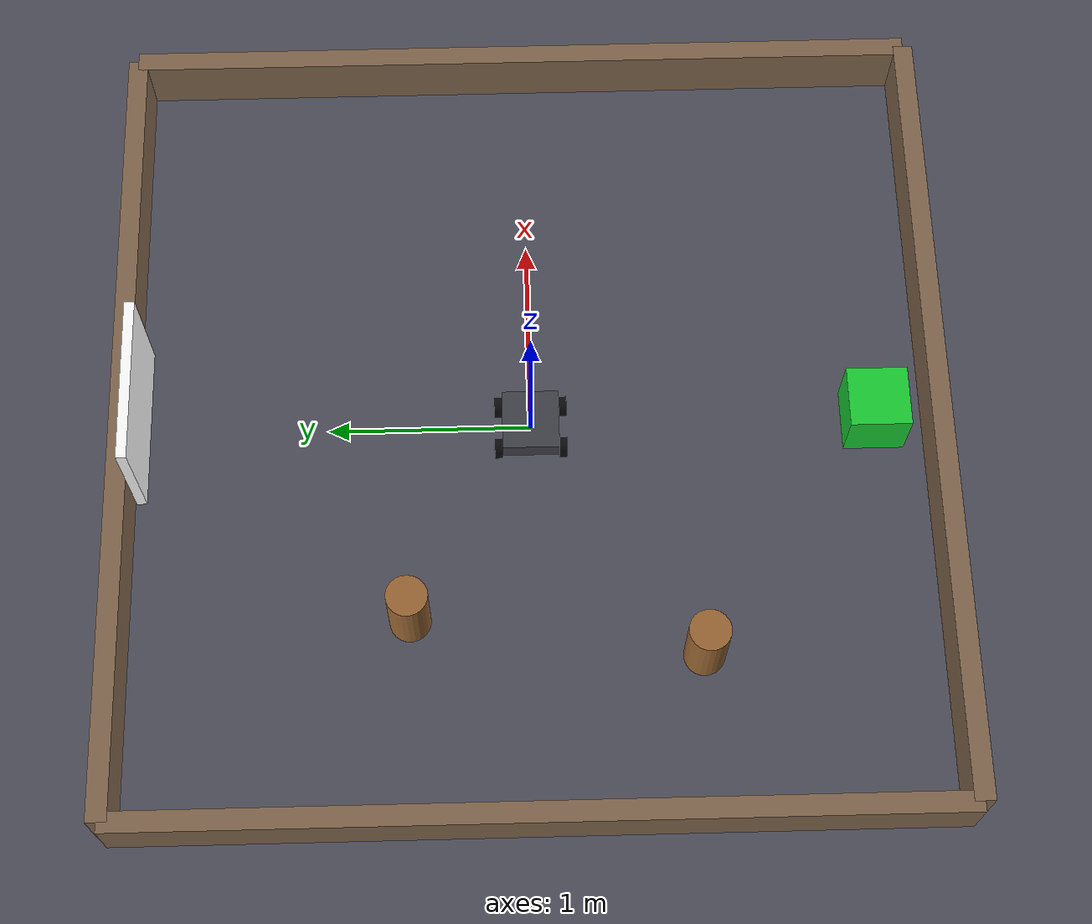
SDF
<?xml version="1.0" ?>
<sdf version="1.8">
  <world name="perceptbot">

    <plugin filename="gz-sim-physics-system"
            name="gz::sim::systems::Physics"/>
    <plugin filename="gz-sim-user-commands-system"
            name="gz::sim::systems::UserCommands"/>
    <plugin filename="gz-sim-scene-broadcaster-system"
            name="gz::sim::systems::SceneBroadcaster"/>
    <plugin filename="gz-sim-sensors-system"
            name="gz::sim::systems::Sensors">
      <render_engine>ogre2</render_engine>
    </plugin>

    <light type="directional" name="sun">
      <cast_shadows>true</cast_shadows>
      <pose>0 0 10 0 0 0</pose>
      <diffuse>0.9 0.9 0.9 1</diffuse>
      <specular>0.2 0.2 0.2 1</specular>
      <direction>-0.3 0.2 -1</direction>
    </light>

    <!-- ground -->
    <model name="ground"><static>true</static><link name="l">
      <collision name="c"><geometry><plane><normal>0 0 1</normal><size>8 8</size></plane></geometry></collision>
      <visual name="v"><geometry><plane><normal>0 0 1</normal><size>8 8</size></plane></geometry>
        <material><ambient>0.3 0.3 0.35 1</ambient><diffuse>0.3 0.3 0.35 1</diffuse></material></visual>
    </link></model>

    <!-- arena walls (4 static boxes) -->
    <model name="walls"><static>true</static><link name="l">
      <collision name="n"><pose>0 2 0.15 0 0 0</pose><geometry><box><size>4 0.1 0.3</size></box></geometry></collision>
      <visual    name="nv"><pose>0 2 0.15 0 0 0</pose><geometry><box><size>4 0.1 0.3</size></box></geometry><material><diffuse>0.5 0.4 0.3 1</diffuse></material></visual>
      <collision name="s"><pose>0 -2 0.15 0 0 0</pose><geometry><box><size>4 0.1 0.3</size></box></geometry></collision>
      <visual    name="sv"><pose>0 -2 0.15 0 0 0</pose><geometry><box><size>4 0.1 0.3</size></box></geometry><material><diffuse>0.5 0.4 0.3 1</diffuse></material></visual>
      <collision name="e"><pose>2 0 0.15 0 0 0</pose><geometry><box><size>0.1 4 0.3</size></box></geometry></collision>
      <visual    name="ev"><pose>2 0 0.15 0 0 0</pose><geometry><box><size>0.1 4 0.3</size></box></geometry><material><diffuse>0.5 0.4 0.3 1</diffuse></material></visual>
      <collision name="w"><pose>-2 0 0.15 0 0 0</pose><geometry><box><size>0.1 4 0.3</size></box></geometry></collision>
      <visual    name="wv"><pose>-2 0 0.15 0 0 0</pose><geometry><box><size>0.1 4 0.3</size></box></geometry><material><diffuse>0.5 0.4 0.3 1</diffuse></material></visual>
    </link></model>

    <!-- B4 light-seek: bright emissive white panel + a spotlight on +Y wall -->
    <model name="light_panel"><static>true</static><link name="l">
      <pose>0 1.9 0.4 0 0 0</pose>
      <visual name="v"><geometry><box><size>0.8 0.05 0.6</size></box></geometry>
        <material><ambient>1 1 1 1</ambient><diffuse>1 1 1 1</diffuse><emissive>1 1 1 1</emissive></material></visual>
    </link></model>
    <light type="spot" name="panel_light">
      <pose>0 1.5 0.8 0 0 0</pose><diffuse>1 1 1 1</diffuse><specular>0.3 0.3 0.3 1</specular>
      <direction>0 -0.4 -0.3</direction><attenuation><range>10</range><linear>0.05</linear></attenuation>
      <spot><inner_angle>0.6</inner_angle><outer_angle>1.0</outer_angle><falloff>1</falloff></spot>
    </light>

    <!-- B5 colour-seek: green box on -Y wall -->
    <model name="green_box"><static>true</static><link name="l">
      <pose>0 -1.7 0.15 0 0 0</pose>
      <collision name="c"><geometry><box><size>0.3 0.3 0.3</size></box></geometry></collision>
      <visual name="v"><geometry><box><size>0.3 0.3 0.3</size></box></geometry>
        <material><ambient>0.1 0.8 0.2 1</ambient><diffuse>0.1 0.8 0.2 1</diffuse></material></visual>
    </link></model>

    <!-- pillars for obstacle behaviours 1-3 -->
    <model name="pillar_a"><static>true</static><link name="l"><pose>-1.0 0.6 0.2 0 0 0</pose>
      <collision name="c"><geometry><cylinder><radius>0.1</radius><length>0.4</length></cylinder></geometry></collision>
      <visual name="v"><geometry><cylinder><radius>0.1</radius><length>0.4</length></cylinder></geometry><material><diffuse>0.6 0.4 0.2 1</diffuse></material></visual>
    </link></model>
    <model name="pillar_b"><static>true</static><link name="l"><pose>-1.2 -0.8 0.2 0 0 0</pose>
      <collision name="c"><geometry><cylinder><radius>0.1</radius><length>0.4</length></cylinder></geometry></collision>
      <visual name="v"><geometry><cylinder><radius>0.1</radius><length>0.4</length></cylinder></geometry><material><diffuse>0.6 0.4 0.2 1</diffuse></material></visual>
    </link></model>

    <!-- ============================ the rover ============================ -->
    <model name="perceptbot">
      <pose>0 0 0.06 0 0 0</pose>

      <link name="base_link">
        <inertial><mass>2.0</mass><inertia><ixx>0.02</ixx><iyy>0.02</iyy><izz>0.03</izz><ixy>0</ixy><ixz>0</ixz><iyz>0</iyz></inertia></inertial>
        <collision name="c"><geometry><box><size>0.30 0.28 0.10</size></box></geometry></collision>
        <visual name="v"><geometry><box><size>0.30 0.28 0.10</size></box></geometry>
          <material><diffuse>0.25 0.25 0.28 1</diffuse></material></visual>

        <!-- 3 single-beam gpu_lidars = ultrasonics -->
        <sensor name="us_front" type="gpu_lidar">
          <pose>0.15 0 0 0 0 0</pose><topic>scan_front</topic><update_rate>10</update_rate>
          <lidar><scan><horizontal><samples>1</samples><resolution>1</resolution><min_angle>0</min_angle><max_angle>0</max_angle></horizontal></scan>
            <range><min>0.04</min><max>2.0</max></range></lidar>
        </sensor>
        <sensor name="us_left" type="gpu_lidar">
          <pose>0 0.14 0 0 0 1.5708</pose><topic>scan_left</topic><update_rate>10</update_rate>
          <lidar><scan><horizontal><samples>1</samples><resolution>1</resolution><min_angle>0</min_angle><max_angle>0</max_angle></horizontal></scan>
            <range><min>0.04</min><max>2.0</max></range></lidar>
        </sensor>
        <sensor name="us_right" type="gpu_lidar">
          <pose>0 -0.14 0 0 0 -1.5708</pose><topic>scan_right</topic><update_rate>10</update_rate>
          <lidar><scan><horizontal><samples>1</samples><resolution>1</resolution><min_angle>0</min_angle><max_angle>0</max_angle></horizontal></scan>
            <range><min>0.04</min><max>2.0</max></range></lidar>
        </sensor>

        <!-- front camera -->
        <sensor name="camera" type="camera">
          <pose>0.15 0 0.04 0 0 0</pose><topic>camera</topic><update_rate>20</update_rate>
          <camera><horizontal_fov>1.0</horizontal_fov>
            <image><width>320</width><height>240</height><format>R8G8B8</format></image>
            <clip><near>0.05</near><far>20</far></clip></camera>
        </sensor>
      </link>

      <!-- 4 wheels -->
      <link name="wheel_fl"><pose>0.11 0.16 -0.05 -1.5708 0 0</pose>
        <inertial><mass>0.2</mass><inertia><ixx>0.0003</ixx><iyy>0.0003</iyy><izz>0.0005</izz><ixy>0</ixy><ixz>0</ixz><iyz>0</iyz></inertia></inertial>
        <collision name="c"><geometry><cylinder><radius>0.05</radius><length>0.04</length></cylinder></geometry></collision>
        <visual name="v"><geometry><cylinder><radius>0.05</radius><length>0.04</length></cylinder></geometry><material><diffuse>0.05 0.05 0.05 1</diffuse></material></visual>
      </link>
      <link name="wheel_fr"><pose>0.11 -0.16 -0.05 -1.5708 0 0</pose>
        <inertial><mass>0.2</mass><inertia><ixx>0.0003</ixx><iyy>0.0003</iyy><izz>0.0005</izz><ixy>0</ixy><ixz>0</ixz><iyz>0</iyz></inertia></inertial>
        <collision name="c"><geometry><cylinder><radius>0.05</radius><length>0.04</length></cylinder></geometry></collision>
        <visual name="v"><geometry><cylinder><radius>0.05</radius><length>0.04</length></cylinder></geometry><material><diffuse>0.05 0.05 0.05 1</diffuse></material></visual>
      </link>
      <link name="wheel_rl"><pose>-0.11 0.16 -0.05 -1.5708 0 0</pose>
        <inertial><mass>0.2</mass><inertia><ixx>0.0003</ixx><iyy>0.0003</iyy><izz>0.0005</izz><ixy>0</ixy><ixz>0</ixz><iyz>0</iyz></inertia></inertial>
        <collision name="c"><geometry><cylinder><radius>0.05</radius><length>0.04</length></cylinder></geometry></collision>
        <visual name="v"><geometry><cylinder><radius>0.05</radius><length>0.04</length></cylinder></geometry><material><diffuse>0.05 0.05 0.05 1</diffuse></material></visual>
      </link>
      <link name="wheel_rr"><pose>-0.11 -0.16 -0.05 -1.5708 0 0</pose>
        <inertial><mass>0.2</mass><inertia><ixx>0.0003</ixx><iyy>0.0003</iyy><izz>0.0005</izz><ixy>0</ixy><ixz>0</ixz><iyz>0</iyz></inertia></inertial>
        <collision name="c"><geometry><cylinder><radius>0.05</radius><length>0.04</length></cylinder></geometry></collision>
        <visual name="v"><geometry><cylinder><radius>0.05</radius><length>0.04</length></cylinder></geometry><material><diffuse>0.05 0.05 0.05 1</diffuse></material></visual>
      </link>

      <joint name="wheel_fl_joint" type="revolute"><parent>base_link</parent><child>wheel_fl</child><axis><xyz>0 1 0</xyz></axis></joint>
      <joint name="wheel_fr_joint" type="revolute"><parent>base_link</parent><child>wheel_fr</child><axis><xyz>0 1 0</xyz></axis></joint>
      <joint name="wheel_rl_joint" type="revolute"><parent>base_link</parent><child>wheel_rl</child><axis><xyz>0 1 0</xyz></axis></joint>
      <joint name="wheel_rr_joint" type="revolute"><parent>base_link</parent><child>wheel_rr</child><axis><xyz>0 1 0</xyz></axis></joint>

      <!-- skid-steer: 2 joints per side -->
      <plugin filename="gz-sim-diff-drive-system"
              name="gz::sim::systems::DiffDrive">
        <left_joint>wheel_fl_joint</left_joint>
        <left_joint>wheel_rl_joint</left_joint>
        <right_joint>wheel_fr_joint</right_joint>
        <right_joint>wheel_rr_joint</right_joint>
        <wheel_separation>0.32</wheel_separation>
        <wheel_radius>0.05</wheel_radius>
        <topic>cmd_vel</topic>
        <odom_topic>odom</odom_topic>
        <frame_id>odom</frame_id>
        <child_frame_id>base_link</child_frame_id>
      </plugin>
    </model>

  </world>
</sdf>
